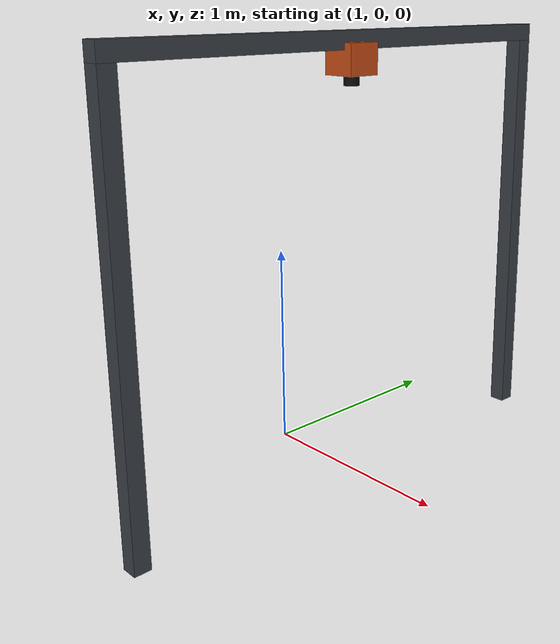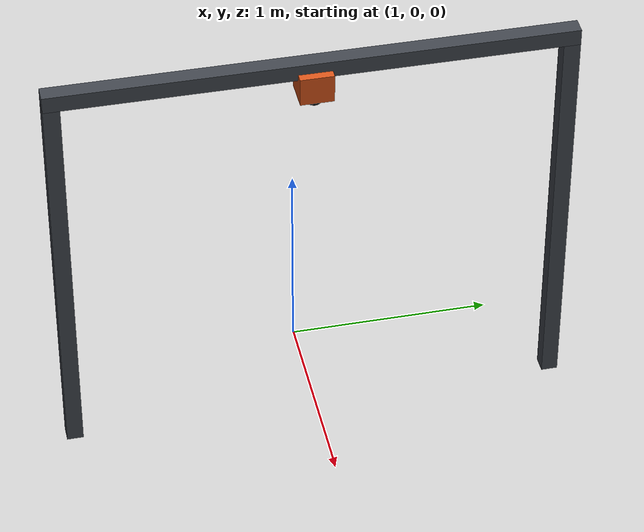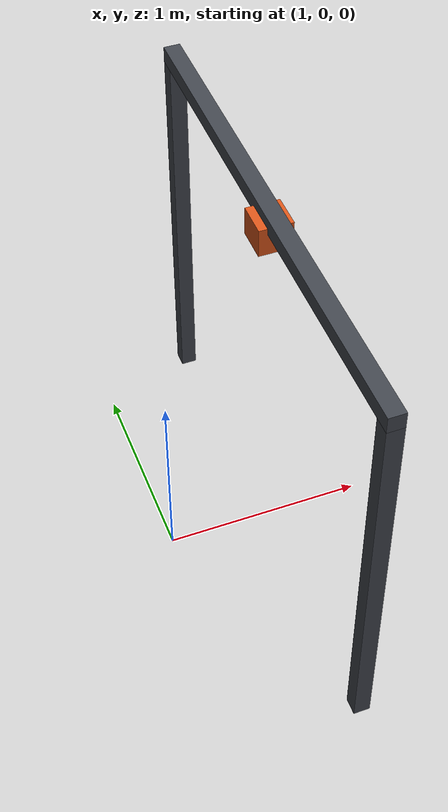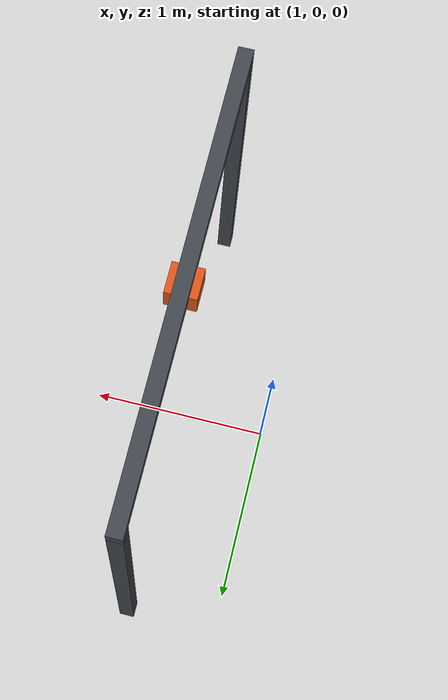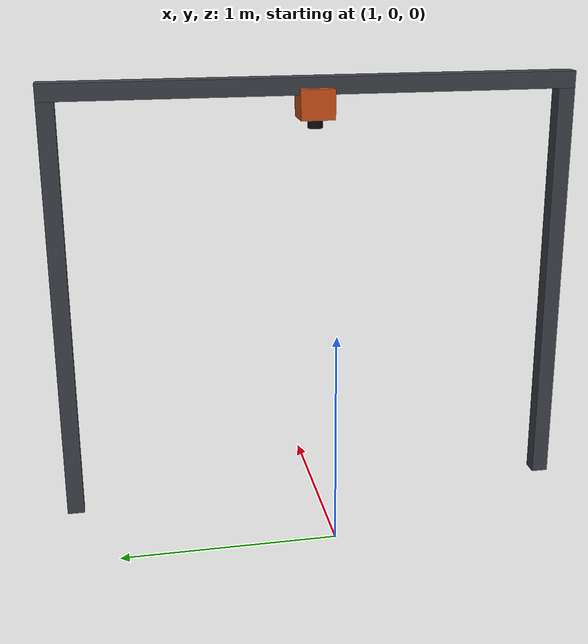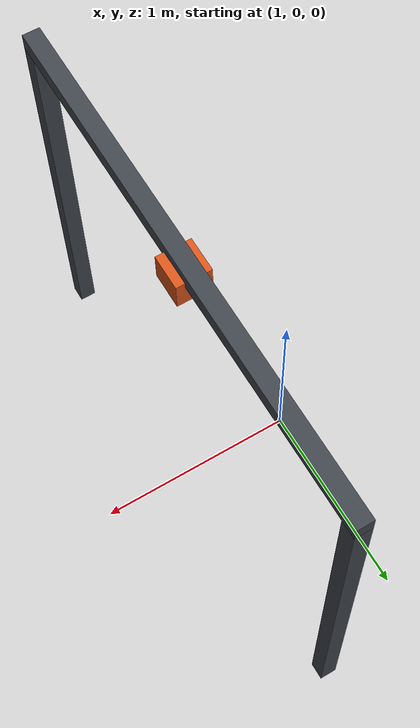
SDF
<?xml version="1.0"?>
<sdf version="1.8">
  <model name="camera_gantry">
    <static>true</static>
    <link name="link">
      <visual name="leg_left">
        <pose>1.5 1.2 1.0 0 0 0</pose>
        <geometry><box><size>0.08 0.08 2.0</size></box></geometry>
        <material><ambient>0.25 0.27 0.30 1</ambient><diffuse>0.25 0.27 0.30 1</diffuse></material>
      </visual>
      <visual name="leg_right">
        <pose>1.5 -1.2 1.0 0 0 0</pose>
        <geometry><box><size>0.08 0.08 2.0</size></box></geometry>
        <material><ambient>0.25 0.27 0.30 1</ambient><diffuse>0.25 0.27 0.30 1</diffuse></material>
      </visual>
      <visual name="crossbeam">
        <pose>1.5 0 2.04 0 0 0</pose>
        <geometry><box><size>0.08 2.48 0.08</size></box></geometry>
        <material><ambient>0.25 0.27 0.30 1</ambient><diffuse>0.25 0.27 0.30 1</diffuse></material>
      </visual>
      <visual name="camera_housing">
        <pose>1.5 0 1.96 0 0 0</pose>
        <geometry><box><size>0.16 0.16 0.14</size></box></geometry>
        <material><ambient>0.85 0.33 0.10 1</ambient><diffuse>0.85 0.33 0.10 1</diffuse></material>
      </visual>
      <visual name="camera_lens">
        <pose>1.5 0 1.87 0 0 0</pose>
        <geometry><cylinder><radius>0.035</radius><length>0.05</length></cylinder></geometry>
        <material><ambient>0.05 0.05 0.05 1</ambient><diffuse>0.05 0.05 0.05 1</diffuse></material>
      </visual>
    </link>
  </model>
</sdf>
